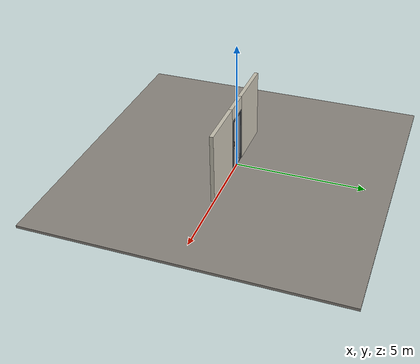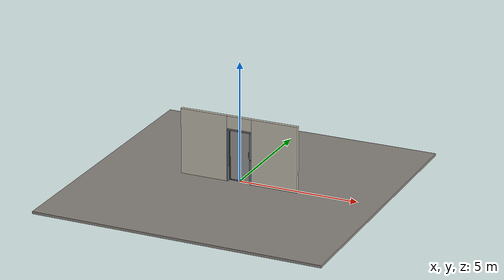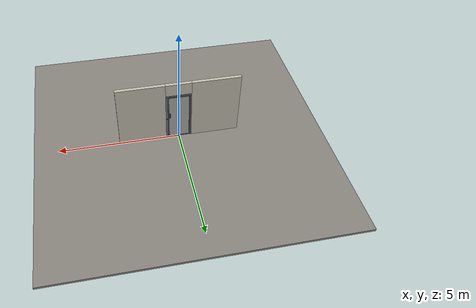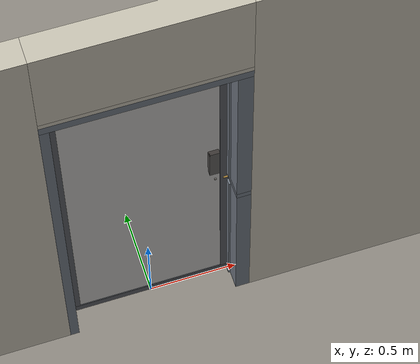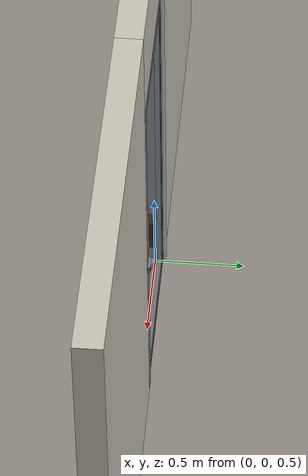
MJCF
<?xml version="1.0" ?>
<mujoco model="db0425_swing_single_full">
  <compiler angle="radian" meshdir="../../hardware" texturedir="../../textures" autolimits="true" inertiafromgeom="false"/>
  <option timestep="0.002" integrator="implicitfast" cone="elliptic" impratio="10" noslip_iterations="3">
    <flag multiccd="enable"/>
  </option>
  <size memory="16M"/>
  <default>
    <geom condim="4" solref="0.005 1" solimp="0.95 0.99 0.001"/>
    <joint solreflimit="0.005 1" solimplimit="0.95 0.99 0.001"/>
    <tendon solreflimit="0.005 1"/>
    <equality solref="0.002 1"/>
  </default>
  <visual>
    <headlight ambient="0.4 0.4 0.4" diffuse="0.7 0.7 0.7" specular="0.2 0.2 0.2"/>
    <quality shadowsize="4096"/>
    <map znear="0.01" zfar="60"/>
  </visual>
  <asset>
    <mesh name="keypad_body_91eb8ded3e" file="keypad_body_91eb8ded3e.obj"/>
    <material name="mat_floor" rgba="0.55 0.53 0.5 1" specular="0.2" shininess="0.15" reflectance="0"/>
    <material name="mat_wall" rgba="0.78 0.76 0.7 1" specular="0.2" shininess="0.1" reflectance="0"/>
    <material name="mat_leaf" rgba="0.35 0.36 0.38 1" specular="0.68" shininess="0.4" reflectance="0.32"/>
    <material name="mat_mesh_infill" rgba="0.6 0.62 0.64 0.55" specular="0.68" shininess="0.3" reflectance="0.1"/>
    <material name="mat_hinge" rgba="0.65 0.66 0.68 1" specular="0.74" shininess="0.5" reflectance="0.36"/>
    <material name="mat_op_nickel_satin" rgba="0.72 0.7 0.66 1" specular="0.8" shininess="0.65" reflectance="0.4"/>
    <material name="mat_trim" rgba="0.85 0.66 0.3 1" specular="0.8" shininess="0.75" reflectance="0.4"/>
    <material name="mat_keypad" rgba="0.22 0.17 0.13 1" specular="0.8" shininess="0.6" reflectance="0.4"/>
    <material name="mat_key" rgba="0.85 0.85 0.82 1" specular="0.2" shininess="0.5" reflectance="0"/>
    <material name="mat_bolt" rgba="0.85 0.66 0.3 1" specular="0.8" shininess="0.75" reflectance="0.4"/>
    <material name="mat_frame" rgba="0.45 0.48 0.52 1" specular="0.32" shininess="0.6" reflectance="0.08"/>
    <texture name="skybox" type="skybox" builtin="gradient" rgb1="0.6 0.7 0.85" rgb2="0.9 0.92 0.95" width="256" height="256"/>
  </asset>
  <worldbody>
    <light name="sun" pos="1.5 -2.5 4" dir="-0.3 0.5 -0.8" directional="true" diffuse="0.8 0.8 0.8" specular="0.3 0.3 0.3" castshadow="true"/>
    <light name="fill" pos="-1.5 2.5 3" dir="0.3 -0.5 -0.7" directional="true" diffuse="0.35 0.35 0.4" castshadow="false"/>
    <camera name="robot_view" pos="0 -2.700312 1.812087" xyaxes="1 0 0 0 0.26963 0.962964" fovy="52"/>
    <camera name="far_view" pos="0 2.575312 1.812087" xyaxes="-1 0 0 0 -0.26963 0.962964" fovy="52"/>
    <camera name="iso" pos="2.004737 -2.278262 2.234138" xyaxes="0.741536 0.670913 0 -0.242917 0.268487 0.932151" fovy="46"/>
    <camera name="detail_handle" pos="0.534 -0.8625 1.32" xyaxes="0.97561 0.219512 0 -0.070934 0.315262 0.94635" fovy="38"/>
    <geom name="floor" type="box" size="6 6 0.05" pos="0 0 -0.05" material="mat_floor" group="0" contype="1" conaffinity="1" friction="0.8 0.005 0.0001" density="2400"/>
    <geom name="wall_left" type="box" size="0.995 0.0725 1.3735" pos="-1.505 -0.0625 1.3735" material="mat_wall" group="0" contype="1" conaffinity="1" friction="0.6 0.005 0.0001" density="800"/>
    <geom name="wall_right" type="box" size="0.98 0.0725 1.3735" pos="1.52 -0.0625 1.3735" material="mat_wall" group="0" contype="1" conaffinity="1" friction="0.6 0.005 0.0001" density="800"/>
    <geom name="wall_header" type="box" size="0.525 0.0725 0.26" pos="0.015 -0.0625 2.487" material="mat_wall" group="0" contype="1" conaffinity="1" friction="0.6 0.005 0.0001" density="800"/>
    <geom name="jamb_hinge" type="box" size="0.025 0.0725 1.0735" pos="-0.485 -0.0625 1.0735" material="mat_frame" group="0" contype="1" conaffinity="1" friction="0.6 0.005 0.0001" density="300"/>
    <geom name="strike_1040_wall_n" type="box" size="0.04 0.06275 0.0183" pos="0.5 -0.07225 1.04" material="mat_frame" group="0" contype="1" conaffinity="1" friction="0.6 0.005 0.0001" density="300"/>
    <geom name="strike_1040_wall_p" type="box" size="0.04 0.008 0.0183" pos="0.5 0.0175 1.04" material="mat_frame" group="0" contype="1" conaffinity="1" friction="0.6 0.005 0.0001" density="300"/>
    <geom name="strike_1040_ramp" type="box" size="0.04 0.018028 0.0183" pos="0.503282 0.018312 1.04" quat="0.957092 0 0 -0.289784" material="mat_frame" group="0" contype="1" conaffinity="1" friction="0.12 0.005 0.0001" density="300"/>
    <geom name="strike_1040_back" type="box" size="0.0285 0.0095 0.0183" pos="0.5115 0 1.04" material="mat_frame" group="0" contype="1" conaffinity="1" friction="0.6 0.005 0.0001" density="300"/>
    <geom name="jamb_strike_0" type="box" size="0.04 0.0725 0.51085" pos="0.5 -0.0625 0.51085" material="mat_frame" group="0" contype="1" conaffinity="1" friction="0.6 0.005 0.0001" density="300"/>
    <geom name="jamb_strike_1" type="box" size="0.04 0.0725 0.54435" pos="0.5 -0.0625 1.60265" material="mat_frame" group="0" contype="1" conaffinity="1" friction="0.6 0.005 0.0001" density="300"/>
    <geom name="jamb_head" type="box" size="0.525 0.0725 0.025" pos="0.015 -0.0625 2.172" material="mat_frame" group="0" contype="1" conaffinity="1" friction="0.6 0.005 0.0001" density="300"/>
    <geom name="head_stud" type="box" size="0.525 0.0725 0.015" pos="0.015 -0.0625 2.212" material="mat_wall" group="0" contype="1" conaffinity="1" friction="0.6 0.005 0.0001" density="500"/>
    <geom name="stop_hinge" type="box" size="0.0055 0.016 1.0735" pos="-0.4545 -0.0195 1.0735" material="mat_frame" group="0" contype="1" conaffinity="1" friction="0.6 0.005 0.0001" density="300"/>
    <geom name="stop_strike" type="box" size="0.0055 0.016 0.50485" pos="0.4545 -0.0195 0.50485" material="mat_frame" group="0" contype="1" conaffinity="1" friction="0.6 0.005 0.0001" density="300"/>
    <geom name="stop_strike_1" type="box" size="0.0055 0.016 0.53835" pos="0.4545 -0.0195 1.60865" material="mat_frame" group="0" contype="1" conaffinity="1" friction="0.6 0.005 0.0001" density="300"/>
    <geom name="stop_head" type="box" size="0.46 0.016 0.0055" pos="0 -0.0195 2.1415" material="mat_frame" group="0" contype="1" conaffinity="1" friction="0.6 0.005 0.0001" density="300"/>
    <site name="approach_point" pos="0 -1.5 0" quat="1 0 0 0" size="0.05" rgba="0.2 0.9 0.2 0.5" group="4"/>
    <site name="goal_point" pos="0 1.5 0" quat="1 0 0 0" size="0.05" rgba="0.2 0.9 0.2 0.5" group="4"/>
    <site name="door_plane_center" pos="0 0 1.0735" quat="1 0 0 0" size="0.02" rgba="0.2 0.9 0.2 0.5" group="4"/>
    <body name="leaf" pos="-0.46 0 0">
      <inertial pos="0.438716 0.000816 1.077357" mass="59.747777" quat="-0.499967 0.500968 0.499064 0.5" diaginertia="4.672272815 22.372611633 27.042982305"/>
      <joint name="leaf_hinge" type="hinge" axis="0 0 1" pos="0.003 0.01 0" limited="true" range="0 2.443461" damping="0.318966" frictionloss="8.96962" armature="0.02"/>
      <geom name="leaf_slab_col" type="box" size="0.457 0.003 1.067" pos="0.46 0 1.076" material="mat_leaf" group="3" contype="1" conaffinity="1" rgba="0.8 0.3 0.3 0.25" friction="0.45 0.005 0.0001" density="1"/>
      <geom name="leaf_rail_b" type="box" size="0.457 0.003 0.0225" pos="0.46 0 0.0315" material="mat_leaf" group="1" contype="0" conaffinity="0" density="1"/>
      <geom name="leaf_rail_t" type="box" size="0.457 0.003 0.0225" pos="0.46 0 2.1205" material="mat_leaf" group="1" contype="0" conaffinity="0" density="1"/>
      <geom name="leaf_stile_h" type="box" size="0.0225 0.003 1.067" pos="0.0255 0 1.076" material="mat_leaf" group="1" contype="0" conaffinity="0" density="1"/>
      <geom name="leaf_stile_l" type="box" size="0.0225 0.003 1.067" pos="0.8945 0 1.076" material="mat_leaf" group="1" contype="0" conaffinity="0" density="1"/>
      <geom name="leaf_mesh" type="box" size="0.412 0.0015 1.022" pos="0.46 0 1.076" material="mat_mesh_infill" group="1" contype="0" conaffinity="0" density="1"/>
      <geom name="hinge_continuous" type="cylinder" size="0.0136 1.057" pos="0.003 0.01 1.076" material="mat_hinge" group="1" contype="0" conaffinity="0" density="2700"/>
      <geom name="leaf_keypad_body" type="mesh" mesh="keypad_body_91eb8ded3e" pos="0.847 0.003 1.18" quat="0 0 0.707107 0.707107" material="mat_keypad" group="0" contype="1" conaffinity="1" friction="0.6 0.005 0.0001" density="2000"/>
      <geom name="leaf_keypad_cylinder" type="cylinder" size="0.009 0.002" pos="0.847 0.037 1.105" quat="0.707107 -0.707107 0 0" material="mat_trim" group="1" contype="0" conaffinity="0" density="7100"/>
      <geom name="leaf_latch_bolt_faceplate" type="box" size="0.0006 0.001 0.0283" pos="0.9164 0 1.04" material="mat_bolt" group="1" contype="0" conaffinity="0" density="8500"/>
      <site name="leaf_edge_mid" pos="0.917 0 1.067" quat="1 0 0 0" size="0.02" rgba="0.2 0.9 0.2 0.5" group="4"/>
      <body name="leaf_handle" pos="0.847 0 1.04">
        <inertial pos="0 0 0" mass="0.007103" quat="0 0 0.707107 0.707107" diaginertia="0.000000102 0.000000102 0.000000128"/>
        <joint name="leaf_handle_hinge" type="hinge" axis="0 -1 0" limited="true" range="0 0.87" damping="0.141422" frictionloss="0.048" stiffness="0.5" springref="-0.5" armature="0.01"/>
        <geom name="leaf_handle_spindle" type="cylinder" size="0.006 0.004" pos="0 0 0" quat="0.707107 -0.707107 0 0" material="mat_op_nickel_satin" group="1" contype="0" conaffinity="0" density="7850"/>
      </body>
      <body name="leaf_keypad_key_1" pos="0.853 0.035 1.232">
        <inertial pos="0 0.002 0" mass="0.001221" quat="0 0 0.707107 -0.707107" diaginertia="0.000000026 0.000000026 0.000000049"/>
        <joint name="leaf_keypad_key_1_slide" type="slide" axis="0 -1 0" limited="true" range="0 0.004" damping="17.146" frictionloss="0.05" stiffness="1500" springref="-0.004" armature="0.1"/>
        <geom name="leaf_keypad_key_1_geom" type="cylinder" size="0.009 0.002" pos="0 0.002 0" quat="0.707107 -0.707107 0 0" material="mat_key" group="0" contype="1" conaffinity="1" friction="0.6 0.005 0.0001" density="1200"/>
        <site name="leaf_keypad_key_1_press" pos="0 0.006 0" quat="1 0 0 0" size="0.008" rgba="0.2 0.9 0.2 0.5" group="4"/>
      </body>
      <body name="leaf_keypad_key_2" pos="0.841 0.035 1.206">
        <inertial pos="0 0.002 0" mass="0.001221" quat="0 0 0.707107 -0.707107" diaginertia="0.000000026 0.000000026 0.000000049"/>
        <joint name="leaf_keypad_key_2_slide" type="slide" axis="0 -1 0" limited="true" range="0 0.004" damping="17.146" frictionloss="0.05" stiffness="1500" springref="-0.004" armature="0.1"/>
        <geom name="leaf_keypad_key_2_geom" type="cylinder" size="0.009 0.002" pos="0 0.002 0" quat="0.707107 -0.707107 0 0" material="mat_key" group="0" contype="1" conaffinity="1" friction="0.6 0.005 0.0001" density="1200"/>
        <site name="leaf_keypad_key_2_press" pos="0 0.006 0" quat="1 0 0 0" size="0.008" rgba="0.2 0.9 0.2 0.5" group="4"/>
      </body>
      <body name="leaf_keypad_key_3" pos="0.853 0.035 1.18">
        <inertial pos="0 0.002 0" mass="0.001221" quat="0 0 0.707107 -0.707107" diaginertia="0.000000026 0.000000026 0.000000049"/>
        <joint name="leaf_keypad_key_3_slide" type="slide" axis="0 -1 0" limited="true" range="0 0.004" damping="17.146" frictionloss="0.05" stiffness="1500" springref="-0.004" armature="0.1"/>
        <geom name="leaf_keypad_key_3_geom" type="cylinder" size="0.009 0.002" pos="0 0.002 0" quat="0.707107 -0.707107 0 0" material="mat_key" group="0" contype="1" conaffinity="1" friction="0.6 0.005 0.0001" density="1200"/>
        <site name="leaf_keypad_key_3_press" pos="0 0.006 0" quat="1 0 0 0" size="0.008" rgba="0.2 0.9 0.2 0.5" group="4"/>
      </body>
      <body name="leaf_keypad_key_4" pos="0.841 0.035 1.154">
        <inertial pos="0 0.002 0" mass="0.001221" quat="0 0 0.707107 -0.707107" diaginertia="0.000000026 0.000000026 0.000000049"/>
        <joint name="leaf_keypad_key_4_slide" type="slide" axis="0 -1 0" limited="true" range="0 0.004" damping="17.146" frictionloss="0.05" stiffness="1500" springref="-0.004" armature="0.1"/>
        <geom name="leaf_keypad_key_4_geom" type="cylinder" size="0.009 0.002" pos="0 0.002 0" quat="0.707107 -0.707107 0 0" material="mat_key" group="0" contype="1" conaffinity="1" friction="0.6 0.005 0.0001" density="1200"/>
        <site name="leaf_keypad_key_4_press" pos="0 0.006 0" quat="1 0 0 0" size="0.008" rgba="0.2 0.9 0.2 0.5" group="4"/>
      </body>
      <body name="leaf_keypad_key_5" pos="0.853 0.035 1.128">
        <inertial pos="0 0.002 0" mass="0.001221" quat="0 0 0.707107 -0.707107" diaginertia="0.000000026 0.000000026 0.000000049"/>
        <joint name="leaf_keypad_key_5_slide" type="slide" axis="0 -1 0" limited="true" range="0 0.004" damping="17.146" frictionloss="0.05" stiffness="1500" springref="-0.004" armature="0.1"/>
        <geom name="leaf_keypad_key_5_geom" type="cylinder" size="0.009 0.002" pos="0 0.002 0" quat="0.707107 -0.707107 0 0" material="mat_key" group="0" contype="1" conaffinity="1" friction="0.6 0.005 0.0001" density="1200"/>
        <site name="leaf_keypad_key_5_press" pos="0 0.006 0" quat="1 0 0 0" size="0.008" rgba="0.2 0.9 0.2 0.5" group="4"/>
      </body>
      <body name="leaf_handle_out" pos="0.847 0 1.04">
        <inertial pos="0 0 0" mass="0.01" quat="1 0 0 0" diaginertia="0.000001 0.000001 0.000001"/>
        <joint name="leaf_handle_out_hinge" type="hinge" axis="0 -1 0" limited="true" range="0 0.08" damping="0.141421" frictionloss="0.048" stiffness="0.5" springref="-0.5" armature="0.01"/>
      </body>
      <body name="leaf_latch_bolt" pos="0.917 0 1.04">
        <inertial pos="-0.0055 0 0" mass="0.074627" quat="0.92388 -0.382683 0 0" diaginertia="0.000002271 0.000013255 0.000013255"/>
        <joint name="leaf_latch_bolt_slide" type="slide" axis="-1 0 0" limited="true" range="0 0.019" damping="2" frictionloss="0.3" stiffness="600" springref="-0.01" armature="0.1"/>
        <geom name="leaf_latch_bolt_capsule" type="capsule" size="0.008 0.0165" pos="-0.0055 0 0" quat="0.707107 0 0.707107 0" material="mat_bolt" group="0" contype="1" conaffinity="1" friction="0.2 0.005 0.0001" density="8500"/>
      </body>
    </body>
  </worldbody>
  <tendon>
    <fixed name="leaf_latch_bolt_coupling" limited="true" range="0 10">
      <joint joint="leaf_latch_bolt_slide" coef="1"/>
      <joint joint="leaf_handle_hinge" coef="-0.023457"/>
      <joint joint="leaf_handle_out_hinge" coef="-0.023457"/>
    </fixed>
  </tendon>
  <sensor>
    <jointpos name="leaf_hinge_pos" joint="leaf_hinge"/>
    <jointvel name="leaf_hinge_vel" joint="leaf_hinge"/>
    <jointpos name="leaf_handle_hinge_pos" joint="leaf_handle_hinge"/>
    <jointvel name="leaf_handle_hinge_vel" joint="leaf_handle_hinge"/>
    <jointpos name="leaf_keypad_key_1_slide_pos" joint="leaf_keypad_key_1_slide"/>
    <jointvel name="leaf_keypad_key_1_slide_vel" joint="leaf_keypad_key_1_slide"/>
    <jointpos name="leaf_keypad_key_2_slide_pos" joint="leaf_keypad_key_2_slide"/>
    <jointvel name="leaf_keypad_key_2_slide_vel" joint="leaf_keypad_key_2_slide"/>
    <jointpos name="leaf_keypad_key_3_slide_pos" joint="leaf_keypad_key_3_slide"/>
    <jointvel name="leaf_keypad_key_3_slide_vel" joint="leaf_keypad_key_3_slide"/>
    <jointpos name="leaf_keypad_key_4_slide_pos" joint="leaf_keypad_key_4_slide"/>
    <jointvel name="leaf_keypad_key_4_slide_vel" joint="leaf_keypad_key_4_slide"/>
    <jointpos name="leaf_keypad_key_5_slide_pos" joint="leaf_keypad_key_5_slide"/>
    <jointvel name="leaf_keypad_key_5_slide_vel" joint="leaf_keypad_key_5_slide"/>
    <jointpos name="leaf_handle_out_hinge_pos" joint="leaf_handle_out_hinge"/>
    <jointvel name="leaf_handle_out_hinge_vel" joint="leaf_handle_out_hinge"/>
    <jointpos name="leaf_latch_bolt_slide_pos" joint="leaf_latch_bolt_slide"/>
    <jointvel name="leaf_latch_bolt_slide_vel" joint="leaf_latch_bolt_slide"/>
  </sensor>
</mujoco>
